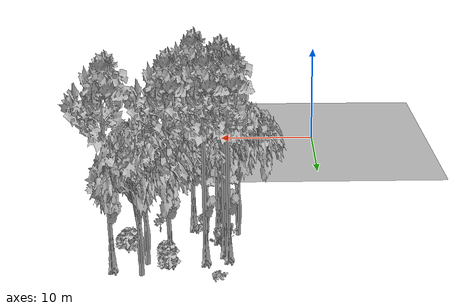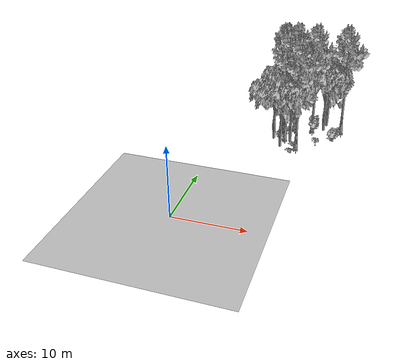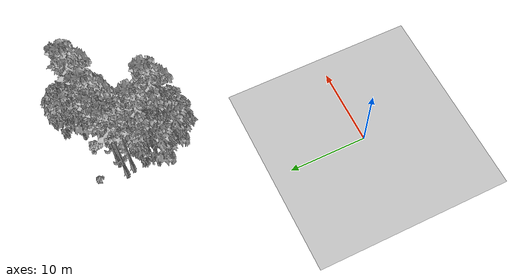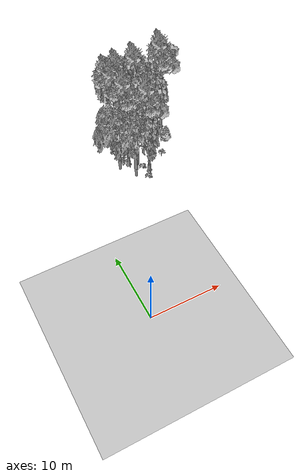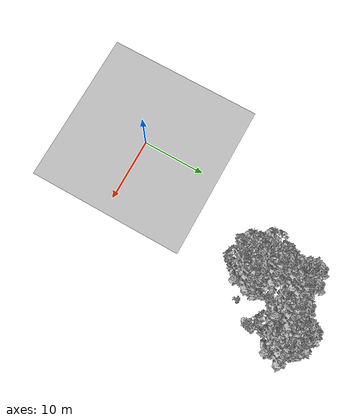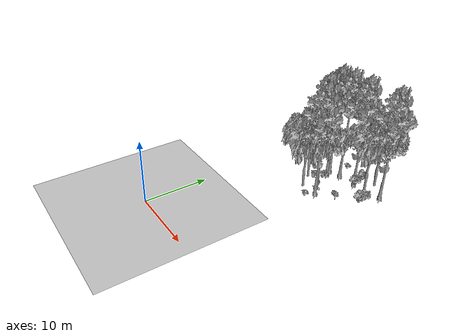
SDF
<sdf version="1.7">
 <world name="default">
  <model name="ground_plane">
   <static>1</static>
   <link name="link">
    <collision name="collision">
     <pose>-50 0 0 0 -0 0</pose>
     <geometry><plane><normal>0 0 1</normal><size>80 80</size></plane></geometry>
     <surface><contact><ode><min_depth>0.01</min_depth><max_vel>0</max_vel></ode></contact></surface>
    </collision>
    <visual name="grass">
     <cast_shadows>0</cast_shadows>
     <geometry>
      <mesh>
       <scale>0.46714285714285714 0.46714285714285714 0.1</scale>
       <uri>file://grass_plane/meshes/grass_plane.dae</uri>
      </mesh>
     </geometry>
    </visual>
   </link>
  </model>
  <model name="Tree 54">
   <static>1</static>
   <pose>14.570710082538113 29.037128638686568 0 1.57079 -0 0</pose>
   <link name="link">
    <collision name="collision">
     <geometry><mesh><scale>3.5 5 3.5</scale><uri>model://tree_2/meshes/tree_2.obj</uri></mesh></geometry>
    </collision>
    <visual name="visual">
     <geometry><mesh><scale>3.5 5 3.5</scale><uri>model://tree_2/meshes/tree_2.obj</uri></mesh></geometry>
    </visual>
   </link>
  </model>
  <model name="Tree 55">
   <static>1</static>
   <pose>14.825840101926893 30.834175940176195 0 1.57079 -0 0</pose>
   <link name="link">
    <collision name="collision">
     <geometry><mesh><scale>3.5 5 3.5</scale><uri>model://tree_2/meshes/tree_2.obj</uri></mesh></geometry>
    </collision>
    <visual name="visual">
     <geometry><mesh><scale>3.5 5 3.5</scale><uri>model://tree_2/meshes/tree_2.obj</uri></mesh></geometry>
    </visual>
   </link>
  </model>
  <model name="Tree 59">
   <static>1</static>
   <pose>10.234037641649756 23.597388973308824 0 1.57079 -0 0</pose>
   <link name="link">
    <collision name="collision">
     <geometry><mesh><scale>3.5 5 3.5</scale><uri>model://tree_2/meshes/tree_2.obj</uri></mesh></geometry>
    </collision>
    <visual name="visual">
     <geometry><mesh><scale>3.5 5 3.5</scale><uri>model://tree_2/meshes/tree_2.obj</uri></mesh></geometry>
    </visual>
   </link>
  </model>
  <model name="Tree 94">
   <static>1</static>
   <pose>8.674069566761652 27.045691833682383 0 1.57079 -0 0</pose>
   <link name="link">
    <collision name="collision">
     <geometry><mesh><scale>3.5 5 3.5</scale><uri>model://tree_9/meshes/tree_9.obj</uri></mesh></geometry>
    </collision>
    <visual name="visual">
     <geometry><mesh><scale>3.5 5 3.5</scale><uri>model://tree_9/meshes/tree_9.obj</uri></mesh></geometry>
    </visual>
   </link>
  </model>
  <model name="Tree 97">
   <static>1</static>
   <pose>12.917707816060648 28.572996132845375 0 1.57079 -0 0</pose>
   <link name="link">
    <collision name="collision">
     <geometry><mesh><scale>3.5 5 3.5</scale><uri>model://tree_9/meshes/tree_9.obj</uri></mesh></geometry>
    </collision>
    <visual name="visual">
     <geometry><mesh><scale>3.5 5 3.5</scale><uri>model://tree_9/meshes/tree_9.obj</uri></mesh></geometry>
    </visual>
   </link>
  </model>
  <model name="Tree 104">
   <static>1</static>
   <pose>11.50338636792749 22.0965107448992 0 1.57079 -0 0</pose>
   <link name="link">
    <collision name="collision">
     <geometry><mesh><scale>3.5 5 3.5</scale><uri>model://tree_9/meshes/tree_9.obj</uri></mesh></geometry>
    </collision>
    <visual name="visual">
     <geometry><mesh><scale>3.5 5 3.5</scale><uri>model://tree_9/meshes/tree_9.obj</uri></mesh></geometry>
    </visual>
   </link>
  </model>
  <model name="Tree 134">
   <static>1</static>
   <pose>9.066201544130038 21.730503432459344 0 1.57079 -0 0</pose>
   <link name="link">
    <collision name="collision">
     <geometry><mesh><scale>3.5 5 3.5</scale><uri>model://tree_2/meshes/tree_2.obj</uri></mesh></geometry>
    </collision>
    <visual name="visual">
     <geometry><mesh><scale>3.5 5 3.5</scale><uri>model://tree_2/meshes/tree_2.obj</uri></mesh></geometry>
    </visual>
   </link>
  </model>
  <model name="Tree 176">
   <static>1</static>
   <pose>8.299573917824866 27.984080850582956 0 1.57079 -0 0</pose>
   <link name="link">
    <collision name="collision">
     <geometry><mesh><scale>3.5 5 3.5</scale><uri>model://tree_9/meshes/tree_9.obj</uri></mesh></geometry>
    </collision>
    <visual name="visual">
     <geometry><mesh><scale>3.5 5 3.5</scale><uri>model://tree_9/meshes/tree_9.obj</uri></mesh></geometry>
    </visual>
   </link>
  </model>
  <model name="Tree 194">
   <static>1</static>
   <pose>7.561914132533836 24.035816940299995 0 1.57079 -0 0</pose>
   <link name="link">
    <collision name="collision">
     <geometry><mesh><scale>3.5 5 3.5</scale><uri>model://tree_2/meshes/tree_2.obj</uri></mesh></geometry>
    </collision>
    <visual name="visual">
     <geometry><mesh><scale>3.5 5 3.5</scale><uri>model://tree_2/meshes/tree_2.obj</uri></mesh></geometry>
    </visual>
   </link>
  </model>
  <model name="Tree 235">
   <static>1</static>
   <pose>17.372622856624815 29.37043727865371 0 1.57079 -0 0</pose>
   <link name="link">
    <collision name="collision">
     <geometry><mesh><scale>3.5 5 3.5</scale><uri>model://tree_9/meshes/tree_9.obj</uri></mesh></geometry>
    </collision>
    <visual name="visual">
     <geometry><mesh><scale>3.5 5 3.5</scale><uri>model://tree_9/meshes/tree_9.obj</uri></mesh></geometry>
    </visual>
   </link>
  </model>
  <model name="Tree 365">
   <static>1</static>
   <pose>10.117737892313329 28.388785453533274 0 1.57079 -0 0</pose>
   <link name="link">
    <collision name="collision">
     <geometry><mesh><scale>3.5 5 3.5</scale><uri>model://tree_9/meshes/tree_9.obj</uri></mesh></geometry>
    </collision>
    <visual name="visual">
     <geometry><mesh><scale>3.5 5 3.5</scale><uri>model://tree_9/meshes/tree_9.obj</uri></mesh></geometry>
    </visual>
   </link>
  </model>
  <model name="Tree 421">
   <static>1</static>
   <pose>9.292474183580289 24.57620961169016 0 1.57079 -0 0</pose>
   <link name="link">
    <collision name="collision">
     <geometry><mesh><scale>3.5 5 3.5</scale><uri>model://tree_9/meshes/tree_9.obj</uri></mesh></geometry>
    </collision>
    <visual name="visual">
     <geometry><mesh><scale>3.5 5 3.5</scale><uri>model://tree_9/meshes/tree_9.obj</uri></mesh></geometry>
    </visual>
   </link>
  </model>
  <model name="Bush 42">
   <static>1</static>
   <pose>12.907722854525382 30.076420638825084 0 1.57079 -0 0</pose>
   <link name="link">
    <collision name="collision">
     <geometry><mesh><scale>2 2 2</scale><uri>model://bush_1/meshes/bush_1.obj</uri></mesh></geometry>
     <surface><contact><collide_without_contact>false</collide_without_contact></contact></surface>
    </collision>
    <visual name="visual">
     <geometry><mesh><scale>2 2 2</scale><uri>model://bush_1/meshes/bush_1.obj</uri></mesh></geometry>
    </visual>
   </link>
  </model>
  <model name="Bush 111">
   <static>1</static>
   <pose>14.284466599251793 23.40696832492293 0 1.57079 -0 0</pose>
   <link name="link">
    <collision name="collision">
     <geometry><mesh><scale>2 2 2</scale><uri>model://bush_5/meshes/bush_5.obj</uri></mesh></geometry>
     <surface><contact><collide_without_contact>false</collide_without_contact></contact></surface>
    </collision>
    <visual name="visual">
     <geometry><mesh><scale>2 2 2</scale><uri>model://bush_5/meshes/bush_5.obj</uri></mesh></geometry>
    </visual>
   </link>
  </model>
  <model name="Bush 158">
   <static>1</static>
   <pose>16.22506783664884 26.257122320132154 0 1.57079 -0 0</pose>
   <link name="link">
    <collision name="collision">
     <geometry><mesh><scale>2 2 2</scale><uri>model://bush_2/meshes/bush_2.obj</uri></mesh></geometry>
     <surface><contact><collide_without_contact>false</collide_without_contact></contact></surface>
    </collision>
    <visual name="visual">
     <geometry><mesh><scale>2 2 2</scale><uri>model://bush_2/meshes/bush_2.obj</uri></mesh></geometry>
    </visual>
   </link>
  </model>
  <model name="Bush 180">
   <static>1</static>
   <pose>16.648087567576738 26.67181297503717 0 1.57079 -0 0</pose>
   <link name="link">
    <collision name="collision">
     <geometry><mesh><scale>2 2 2</scale><uri>model://bush_1/meshes/bush_1.obj</uri></mesh></geometry>
     <surface><contact><collide_without_contact>false</collide_without_contact></contact></surface>
    </collision>
    <visual name="visual">
     <geometry><mesh><scale>2 2 2</scale><uri>model://bush_1/meshes/bush_1.obj</uri></mesh></geometry>
    </visual>
   </link>
  </model>
  <model name="Bush 190">
   <static>1</static>
   <pose>10.791782154509455 22.87877371433754 0 1.57079 -0 0</pose>
   <link name="link">
    <collision name="collision">
     <geometry><mesh><scale>2 2 2</scale><uri>model://bush_2/meshes/bush_2.obj</uri></mesh></geometry>
     <surface><contact><collide_without_contact>false</collide_without_contact></contact></surface>
    </collision>
    <visual name="visual">
     <geometry><mesh><scale>2 2 2</scale><uri>model://bush_2/meshes/bush_2.obj</uri></mesh></geometry>
    </visual>
   </link>
  </model>
  <model name="Bush 234">
   <static>1</static>
   <pose>9.184975378733661 25.671141740718838 0 1.57079 -0 0</pose>
   <link name="link">
    <collision name="collision">
     <geometry><mesh><scale>2 2 2</scale><uri>model://bush_4/meshes/bush_4.obj</uri></mesh></geometry>
     <surface><contact><collide_without_contact>false</collide_without_contact></contact></surface>
    </collision>
    <visual name="visual">
     <geometry><mesh><scale>2 2 2</scale><uri>model://bush_4/meshes/bush_4.obj</uri></mesh></geometry>
    </visual>
   </link>
  </model>
  <model name="Bush 255">
   <static>1</static>
   <pose>10.713198983403565 20.792022695750198 0 1.57079 -0 0</pose>
   <link name="link">
    <collision name="collision">
     <geometry><mesh><scale>2 2 2</scale><uri>model://bush_2/meshes/bush_2.obj</uri></mesh></geometry>
     <surface><contact><collide_without_contact>false</collide_without_contact></contact></surface>
    </collision>
    <visual name="visual">
     <geometry><mesh><scale>2 2 2</scale><uri>model://bush_2/meshes/bush_2.obj</uri></mesh></geometry>
    </visual>
   </link>
  </model>
  <model name="Bush 315">
   <static>1</static>
   <pose>8.945936894794954 31.189612515282462 0 1.57079 -0 0</pose>
   <link name="link">
    <collision name="collision">
     <geometry><mesh><scale>2 2 2</scale><uri>model://bush_2/meshes/bush_2.obj</uri></mesh></geometry>
     <surface><contact><collide_without_contact>false</collide_without_contact></contact></surface>
    </collision>
    <visual name="visual">
     <geometry><mesh><scale>2 2 2</scale><uri>model://bush_2/meshes/bush_2.obj</uri></mesh></geometry>
    </visual>
   </link>
  </model>
  <model name="Bush 446">
   <static>1</static>
   <pose>13.150100845084744 28.337844295096374 0 1.57079 -0 0</pose>
   <link name="link">
    <collision name="collision">
     <geometry><mesh><scale>2 2 2</scale><uri>model://bush_1/meshes/bush_1.obj</uri></mesh></geometry>
     <surface><contact><collide_without_contact>false</collide_without_contact></contact></surface>
    </collision>
    <visual name="visual">
     <geometry><mesh><scale>2 2 2</scale><uri>model://bush_1/meshes/bush_1.obj</uri></mesh></geometry>
    </visual>
   </link>
  </model>
  <model name="Bush 616">
   <static>1</static>
   <pose>8.3979464041998 24.504528533793618 0 1.57079 -0 0</pose>
   <link name="link">
    <collision name="collision">
     <geometry><mesh><scale>2 2 2</scale><uri>model://bush_4/meshes/bush_4.obj</uri></mesh></geometry>
     <surface><contact><collide_without_contact>false</collide_without_contact></contact></surface>
    </collision>
    <visual name="visual">
     <geometry><mesh><scale>2 2 2</scale><uri>model://bush_4/meshes/bush_4.obj</uri></mesh></geometry>
    </visual>
   </link>
  </model>
  <model name="Bush 638">
   <static>1</static>
   <pose>16.433669438060804 25.876830267477942 0 1.57079 -0 0</pose>
   <link name="link">
    <collision name="collision">
     <geometry><mesh><scale>2 2 2</scale><uri>model://bush_1/meshes/bush_1.obj</uri></mesh></geometry>
     <surface><contact><collide_without_contact>false</collide_without_contact></contact></surface>
    </collision>
    <visual name="visual">
     <geometry><mesh><scale>2 2 2</scale><uri>model://bush_1/meshes/bush_1.obj</uri></mesh></geometry>
    </visual>
   </link>
  </model>
 </world>
</sdf>
